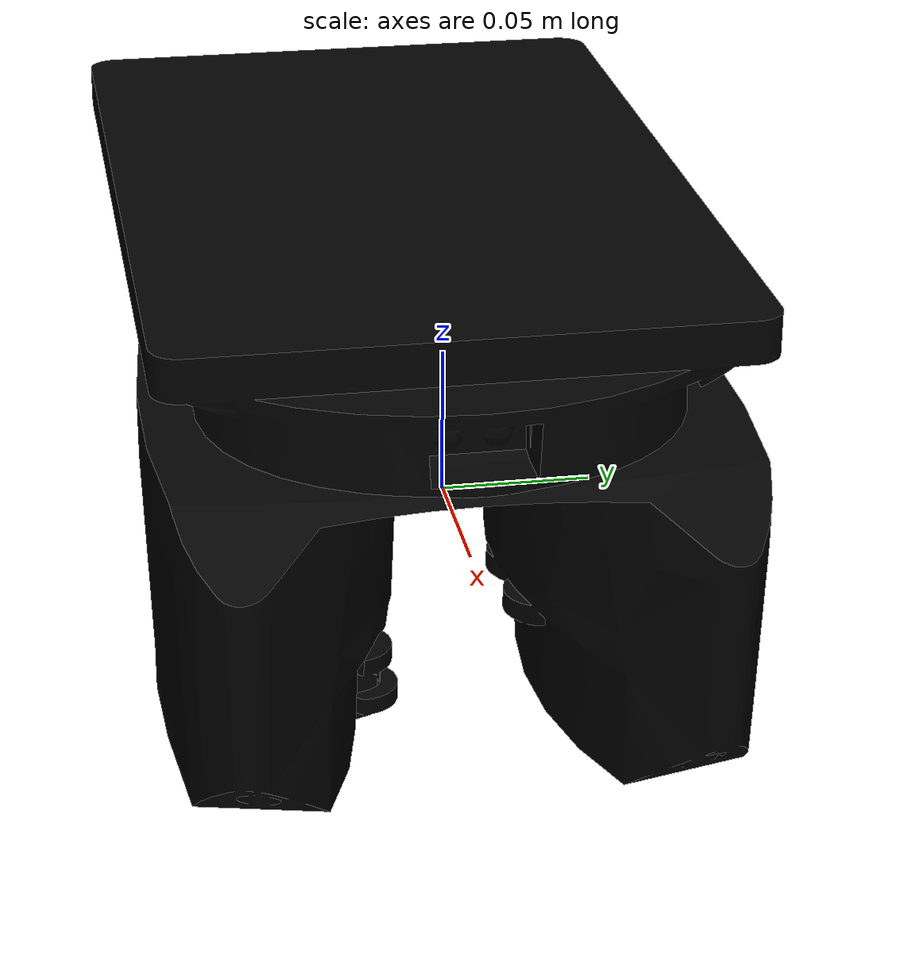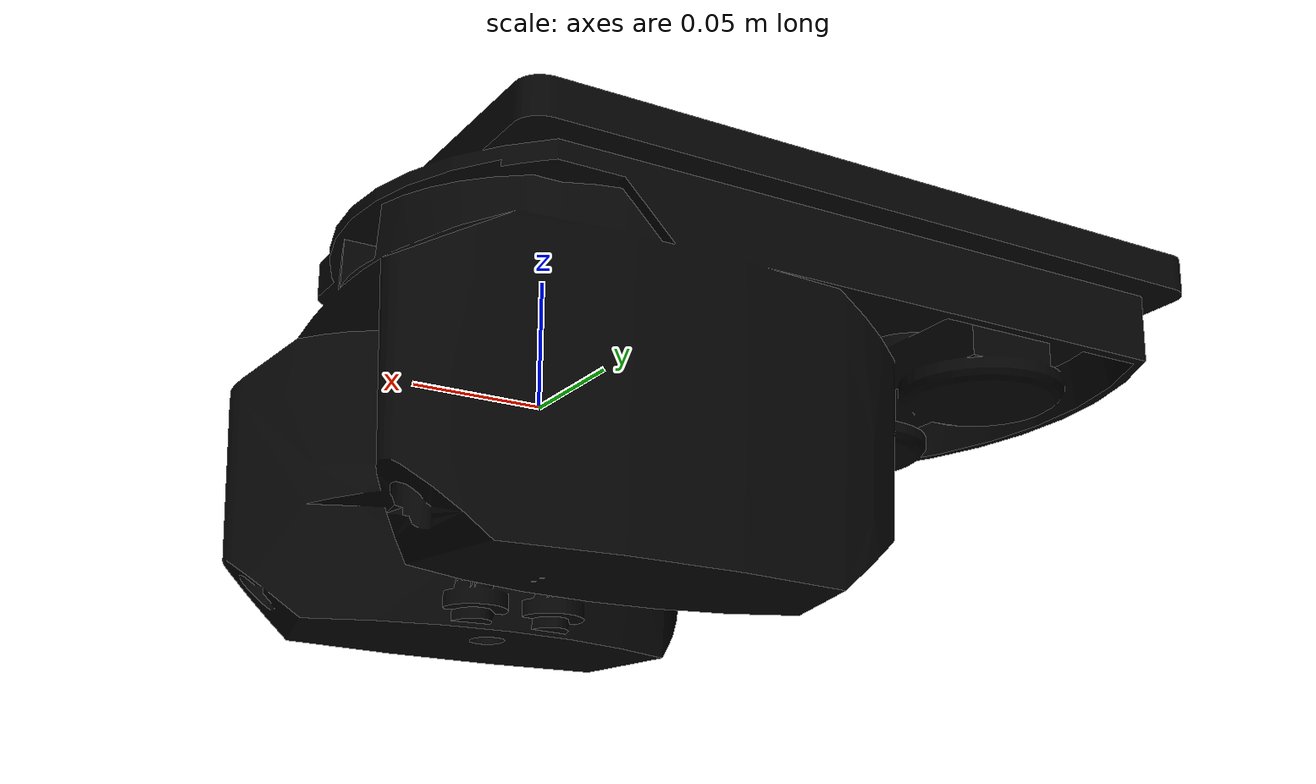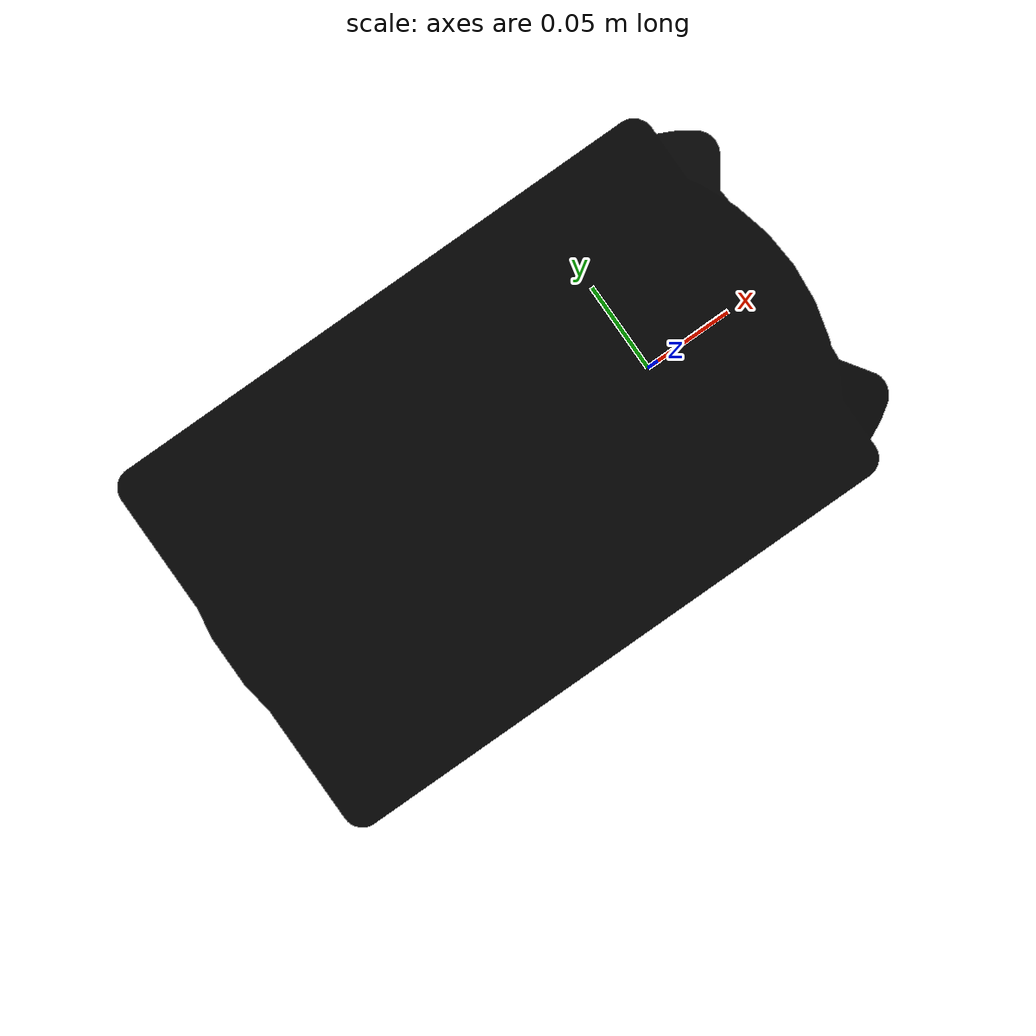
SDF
<?xml version="1.0"?>
<sdf version="1.9">
  <model name="room315_shuttle">
    <static>false</static>
    <link name="room315_shuttle_link">
      <kinematic>true</kinematic>
      <gravity>false</gravity>
      <pose>0 0 0 0 0 0</pose>
      <inertial>
        <mass>0.1</mass>
        <inertia>
          <ixx>0.001</ixx>
          <ixy>0.0</ixy>
          <ixz>0.0</ixz>
          <iyy>0.001</iyy>
          <iyz>0.0</iyz>
          <izz>0.001</izz>
        </inertia>
      </inertial>
      <visual name="room315_shuttle_visual">
        <pose>-0.25 -0.100000024 -0.078499973 0 0 0</pose>
        <geometry>
          <mesh>
            <uri>model://room315_shuttle/meshes/shuttle.STL</uri>
          </mesh>
        </geometry>
        <material>
          <ambient>0.01 0.01 0.01 1</ambient>
          <diffuse>0.01 0.01 0.01 1</diffuse>
          <specular>0.20 0.20 0.20 1</specular>
          <emissive>0 0 0 1</emissive>
        </material>
      </visual>
      <collision name="room315_shuttle_robot_collision">
        <pose>-0.078417048 0 0 0 0 0</pose>
        <geometry>
          <box>
            <size>0.36 0.22 0.17</size>
          </box>
        </geometry>
        <surface>
          <contact>
            <!-- Collides with default robot collisions, but not with Room 315 rail masks. -->
            <collide_bitmask>0x0002</collide_bitmask>
          </contact>
        </surface>
      </collision>
    </link>
    <plugin
        filename="gz-sim-pose-publisher-system"
        name="gz::sim::systems::PosePublisher">
      <publish_model_pose>true</publish_model_pose>
      <publish_link_pose>true</publish_link_pose>
      <publish_collision_pose>false</publish_collision_pose>
      <publish_visual_pose>false</publish_visual_pose>
      <publish_nested_model_pose>false</publish_nested_model_pose>
      <update_frequency>30</update_frequency>
    </plugin>
  </model>
</sdf>
